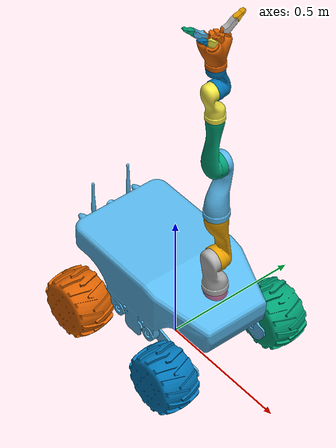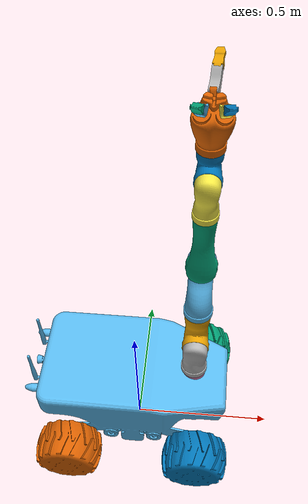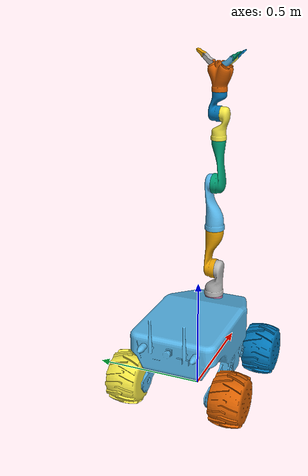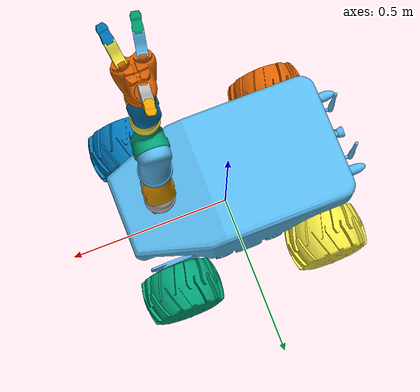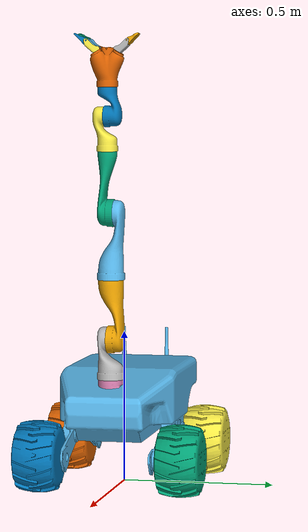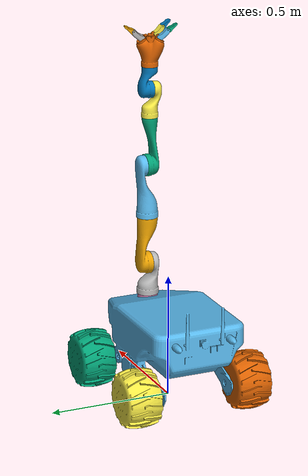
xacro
<?xml version="1.0"?>
<!-- URDF for Summit XL-GEN (LunaLab variant) -->
<robot xmlns:xacro="http://wiki.ros.org/xacro" name="$(arg name)">

  <!-- Imported elements -->
  <!-- Summit XL -->
  <xacro:include filename="$(find lunalab_summit_xl_gen_description)/urdf/summit_xl/summit_xl.xacro"/>

  <!-- Manipulators -->
  <xacro:include filename="$(find lunalab_summit_xl_gen_description)/urdf/lunalab_summit_xl_manipulators.xacro"/>

  <!-- Miscellaneous -->
  <xacro:include filename="$(find lunalab_summit_xl_gen_description)/urdf/lunalab_summit_xl_misc.xacro"/>

  <!-- Sensors -->
  <xacro:include filename="$(find lunalab_summit_xl_gen_description)/urdf/lunalab_summit_xl_sensors.xacro"/>

  <!-- Gazebo plugins -->
  <xacro:include filename="$(find lunalab_summit_xl_gen_description)/urdf/lunalab_summit_xl_gen.gazebo"/>

  <!-- Parameters -->
  <!-- Name of the robot (mandatory) -->
  <xacro:arg name="name" default="lunalab_summit_xl_gen"/>
  <!-- Prefix for all entities -->
  <xacro:arg name="prefix" default="robot_"/>

  <!-- Flag to enable safety limits controllers on manipulator joints -->
  <xacro:arg name="safety_limits" default="false"/>
  <!-- Lower and upper margin for position limits of all safety controllers -->
  <xacro:arg name="safety_position_margin" default="0.17453293"/>
  <!-- Parametric k-position factor of all safety controllers -->
  <xacro:arg name="safety_k_position" default="20"/>

  <!-- Flag to enable external devices (mesh) -->
  <xacro:arg name="external_devices" default="false"/>
  <!-- Flag to enable RealSense D435 -->
  <xacro:arg name="realsense_d435" default="false"/>
  <!-- Flag to enable RealSense D455 -->
  <xacro:arg name="realsense_d455" default="false"/>
  <!-- Flag to enable RealSense L515 -->
  <xacro:arg name="realsense_l515" default="false"/>
  <!-- Flag to enable LiDAR -->
  <xacro:arg name="lidar" default="false"/>

  <!-- Flag to enable collision geometry for the chassis of Summit XL -->
  <xacro:arg name="collision_chassis" default="true"/>
  <!-- Flag to enable collision geometry for the wheels of Summit XL -->
  <xacro:arg name="collision_wheels" default="true"/>
  <!-- Flag to enable collision geometry for manipulator's arm -->
  <xacro:arg name="collision_arm" default="true"/>
  <!-- Flag to enable collision geometry for manipulator's gripper (hand and fingers) -->
  <xacro:arg name="collision_gripper" default="true"/>
  <!-- Flag to enable collision geometry for external devices -->
  <xacro:arg name="collision_external_devices" default="true"/>
  <!-- Flag to enable collision geometry for RealSense D435 -->
  <xacro:arg name="collision_realsense_d435" default="true"/>
  <!-- Flag to enable collision geometry for RealSense D455 -->
  <xacro:arg name="collision_realsense_d455" default="true"/>
  <!-- Flag to enable collision geometry for RealSense L515 -->
  <xacro:arg name="collision_realsense_l515" default="true"/>
  <!-- Flag to enable collision geometry for LiDAR -->
  <xacro:arg name="collision_lidar" default="true"/>

  <!-- (unimplemented!) Flag to select the high or low quality model -->
  <xacro:arg name="high_quality_mesh" default="ignored"/>

  <!-- Flag to mimic joints of the gripper -->
  <xacro:arg name="mimic_gripper_joints" default="false"/>

  <!-- Flag to enable ros2 controllers for manipulator -->
  <xacro:arg name="ros2_control" default="true"/>

  <!-- The ros2_control plugin that should be loaded for the manipulator ('fake', 'ign', 'real' or custom) -->
  <xacro:arg name="ros2_control_plugin" default="ign"/>

  <!-- The output control command interface provided by ros2_control ('position', 'velocity' or 'effort') -->
  <xacro:arg name="ros2_control_command_interface" default="effort"/>

  <!-- The filepath to parameters of ROS 2 controllers -->
  <xacro:arg name="ros2_controller_parameters" default="$(find lunalab_summit_xl_gen_moveit_config)/config/controllers_$(arg ros2_control_command_interface).yaml"/>

  <!-- Flag to preserve fixed joints and prevent lumping when generating SDF for Gazebo -->
  <xacro:arg name="gazebo_preserve_fixed_joint" default="false"/>

  <!-- Flag to enable self-collision of all robot links when generating SDF for Gazebo -->
  <xacro:arg name="gazebo_self_collide" default="false"/>

  <!-- Flag to enable self-collision of robot between fingers (finger tips) when generating SDF for Gazebo -->
  <xacro:arg name="gazebo_self_collide_fingers" default="true"/>

  <!-- Flag to enable DiffDrive Gazebo plugin for Summit XL -->
  <xacro:arg name="gazebo_diff_drive" default="true"/>

  <!-- Flag to enable JointTrajectoryController Gazebo plugin for manipulator -->
  <xacro:arg name="gazebo_joint_trajectory_controller" default="false"/>

  <!-- Flag to enable JointStatePublisher Gazebo plugin for all joints -->
  <xacro:arg name="gazebo_joint_state_publisher" default="false"/>

  <!-- Flag to enable PosePublisher Gazebo plugin for true pose of robot -->
  <xacro:arg name="gazebo_pose_publisher" default="true"/>

  <!-- Properties -->
  <!-- Prefixes -->
  <xacro:property name="prefix_summit_xl" value="$(arg prefix)summit_xl_"/>
  <xacro:property name="prefix_manipulator" value="$(arg prefix)j2s7s300_"/>
  <xacro:property name="prefix_external_devices" value="$(arg prefix)external_devices_"/>
  <xacro:property name="prefix_realsense_d435" value="$(arg prefix)realsense_d435_"/>
  <xacro:property name="prefix_realsense_d455" value="$(arg prefix)realsense_d455_"/>
  <xacro:property name="prefix_realsense_l515" value="$(arg prefix)realsense_l515_"/>
  <xacro:property name="prefix_lidar" value="$(arg prefix)lidar_"/>

  <!-- Manipulator offset -->
  <xacro:property name="manipulator_base_parent" value="${prefix_summit_xl}base_link"/>
  <xacro:property name="manipulator_offset_xyz" value="0.204 0.0 0.11"/>
  <xacro:property name="manipulator_offset_rpy" value="0.0 0.0 0.0"/>

  <!-- External devices offset -->
  <xacro:property name="external_devices_base_parent" value="${prefix_summit_xl}base_link"/>
  <xacro:property name="external_devices_offset_xyz" value="-0.133 0.0 0.27"/>
  <xacro:property name="external_devices_offset_rpy" value="0.0 0.0 0.0"/>

  <!-- RealSense D435 offset -->
  <xacro:property name="realsense_d435_base_parent" value="${prefix_summit_xl}base_link"/>
  <xacro:property name="realsense_d435_offset_xyz" value="0.397 0.0 0.238"/>
  <xacro:property name="realsense_d435_offset_rpy" value="0.0 0.0 0.0"/>

  <!-- RealSense D455 offset -->
  <xacro:property name="realsense_d455_base_parent" value="${prefix_external_devices}link"/>
  <xacro:property name="realsense_d455_offset_xyz" value="-0.145329 0.0 0.322246"/>
  <xacro:property name="realsense_d455_offset_rpy" value="0.0 0.0 ${30*pi/180}"/>

  <!-- RealSense L515 offset -->
  <xacro:property name="realsense_l515_base_parent" value="${prefix_manipulator}link_7"/>
  <xacro:property name="realsense_l515_offset_xyz" value="0.0 0.0 -0.01"/>
  <xacro:property name="realsense_l515_offset_rpy" value="0.0 ${pi} 0.0"/>

  <!-- LiDAR offset -->
  <xacro:property name="lidar_base_parent" value="${prefix_summit_xl}base_link"/>
  <xacro:property name="lidar_offset_xyz" value="0.3 0.0 0.25"/>
  <xacro:property name="lidar_offset_rpy" value="0.0 0.0 0.0"/>

  <!-- Robot -->
  <!-- Summit XL -->
  <xacro:summit_xl
    prefix="${prefix_summit_xl}"
    add_base_footprint="true"
    collision_chassis="$(arg collision_chassis)"
    collision_wheels="$(arg collision_wheels)"
    high_quality_mesh="$(arg high_quality_mesh)"
    ros2_control="$(arg ros2_control)"
    ros2_control_plugin="$(arg ros2_control_plugin)"
    ros2_control_command_interface="none"
    gazebo_preserve_fixed_joint="$(arg gazebo_preserve_fixed_joint)"
    gazebo_diff_drive="$(arg gazebo_diff_drive)"
  />

  <!-- Kinova Gen2 (Jaco2, spherical wrist, 7DOF, 3-finger gripper) -->
  <xacro:j2s7s300
    base_parent="${manipulator_base_parent}"
    prefix="${prefix_manipulator}"
    joint_base_origin_xyz="${manipulator_offset_xyz}"
    joint_base_origin_rpy="${manipulator_offset_rpy}"
    safety_limits="$(arg safety_limits)"
    safety_position_margin="$(arg safety_position_margin)"
    safety_k_position="$(arg safety_k_position)"
    collision_arm="$(arg collision_arm)"
    collision_gripper="$(arg collision_gripper)"
    high_quality_mesh="$(arg high_quality_mesh)"
    mimic_gripper_joints="$(arg mimic_gripper_joints)"
    ros2_control="$(arg ros2_control)"
    ros2_control_plugin="$(arg ros2_control_plugin)"
    ros2_control_command_interface="$(arg ros2_control_command_interface)"
    gazebo_preserve_fixed_joint="$(arg gazebo_preserve_fixed_joint)"
    gazebo_self_collide_fingers="$(arg gazebo_self_collide_fingers)"
    gazebo_joint_trajectory_controller="$(arg gazebo_joint_trajectory_controller)"
  />

  <!-- Miscellaneous -->
  <xacro:if value="$(arg external_devices)">
    <xacro:external_devices
      base_parent="${external_devices_base_parent}"
      prefix="${prefix_external_devices}"
      joint_origin_xyz="${external_devices_offset_xyz}"
      joint_origin_rpy="${external_devices_offset_rpy}"
      collision="$(arg collision_external_devices)"
      high_quality_mesh="$(arg high_quality_mesh)"
      gazebo_preserve_fixed_joint="$(arg gazebo_preserve_fixed_joint)"
    />
  </xacro:if>

  <!-- Sensors -->
  <xacro:if value="$(arg realsense_d435)">
    <xacro:realsense_d435
      base_parent="${realsense_d435_base_parent}"
      prefix="${prefix_realsense_d435}"
      joint_origin_xyz="${realsense_d435_offset_xyz}"
      joint_origin_rpy="${realsense_d435_offset_rpy}"
      collision="$(arg collision_realsense_d435)"
      high_quality_mesh="$(arg high_quality_mesh)"
      gazebo_preserve_fixed_joint="$(arg gazebo_preserve_fixed_joint)"
    />
  </xacro:if>
  <xacro:if value="$(arg realsense_d455)">
    <xacro:realsense_d455
      base_parent="${realsense_d455_base_parent}"
      prefix="${prefix_realsense_d455}"
      joint_origin_xyz="${realsense_d455_offset_xyz}"
      joint_origin_rpy="${realsense_d455_offset_rpy}"
      collision="$(arg collision_realsense_d455)"
      high_quality_mesh="$(arg high_quality_mesh)"
      gazebo_preserve_fixed_joint="$(arg gazebo_preserve_fixed_joint)"
    />
  </xacro:if>
  <xacro:if value="$(arg realsense_l515)">
    <xacro:realsense_l515
      base_parent="${realsense_l515_base_parent}"
      prefix="${prefix_realsense_l515}"
      joint_origin_xyz="${realsense_l515_offset_xyz}"
      joint_origin_rpy="${realsense_l515_offset_rpy}"
      collision="$(arg collision_realsense_l515)"
      high_quality_mesh="$(arg high_quality_mesh)"
      gazebo_preserve_fixed_joint="$(arg gazebo_preserve_fixed_joint)"
    />
  </xacro:if>
  <xacro:if value="$(arg lidar)">
    <xacro:lidar
      base_parent="${lidar_base_parent}"
      prefix="${prefix_lidar}"
      joint_origin_xyz="${lidar_offset_xyz}"
      joint_origin_rpy="${lidar_offset_rpy}"
      collision="$(arg collision_lidar)"
      high_quality_mesh="$(arg high_quality_mesh)"
      gazebo_preserve_fixed_joint="$(arg gazebo_preserve_fixed_joint)"
    />
  </xacro:if>

  <!-- Gazebo - Self-collision -->
  <xacro:if value="$(arg gazebo_self_collide)">
    <gazebo>
      <self_collide>true</self_collide>
    </gazebo>
  </xacro:if>

  <!-- Gazebo - ROS 2 control (Ignition) -->
  <xacro:if value="$(arg ros2_control)">
    <xacro:if value="${'ign' in '$(arg ros2_control_plugin)'}">
      <xacro:ign_ros2_control controller_parameters="$(arg ros2_controller_parameters)"/>
    </xacro:if>
  </xacro:if>

  <!-- Gazebo - Joint state publisher -->
  <xacro:if value="$(arg gazebo_joint_state_publisher)">
    <xacro:gazebo_joint_state_publisher_summit_xl_gen_j2s7s300 prefix_summit_xl="${prefix_summit_xl}" prefix_manipulator="${prefix_manipulator}"/>
  </xacro:if>

  <!-- Gazebo - Pose publisher -->
  <xacro:if value="$(arg gazebo_pose_publisher)">
    <xacro:gazebo_pose_publisher/>
  </xacro:if>
</robot>

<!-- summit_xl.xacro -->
<!-- Macro for creation of Summit XL (base and wheels) -->
<robot xmlns:xacro="http://wiki.ros.org/xacro">

  <!-- Imported elements -->
  <xacro:include filename="$(find lunalab_summit_xl_gen_description)/urdf/summit_xl/summit_xl_base.xacro"/>
  <xacro:include filename="$(find lunalab_summit_xl_gen_description)/urdf/summit_xl/rubber_wheel.xacro"/>
  <xacro:include filename="$(find lunalab_summit_xl_gen_description)/urdf/summit_xl/summit_xl.ros2_control"/>
  <xacro:include filename="$(find lunalab_summit_xl_gen_description)/urdf/summit_xl/summit_xl.gazebo"/>

  <!-- Properties -->
  <!-- Wheel offset (from base_link to the center of the wheel) -->
  <xacro:property name="wheel_offset_x" value="0.229"/>
  <xacro:property name="wheel_offset_y" value="0.235"/>
  <xacro:property name="wheel_offset_z" value="0.0"/>

  <!-- Macro -->
  <!-- prefix                        - Prefix for all entities -->
  <!-- add_base_footprint            - Flag that enables base footprint link -->
  <!-- high_quality_mesh             - Flag to select the high or low quality model -->
  <xacro:macro name="summit_xl" params="
    prefix:=summit_xl_
    add_base_footprint:=true
    collision_chassis:=true
    collision_wheels:=true
    high_quality_mesh:=true
    ros2_control:=true
    ros2_control_plugin:=ign
    ros2_control_command_interface:=none
    gazebo_preserve_fixed_joint:=false
    gazebo_diff_drive:=true
  ">
    <!-- Radius of wheels based on the utilised wheels (only default rubber wheels are currently supported) -->
    <xacro:property name="wheel_radius" value="${rubber_wheel_radius}"/>

    <!-- Summit XL base -->
    <xacro:summit_xl_base prefix="${prefix}" add_base_footprint="${add_base_footprint}" collision="${collision_chassis}" high_quality_mesh="${high_quality_mesh}" gazebo_preserve_fixed_joint="${gazebo_preserve_fixed_joint}"/>

    <!-- Wheels (rubber) -->
    <xacro:rubber_wheel prefix="${prefix}front_left_" parent="${prefix}base_link" left_wheel="true" collision="${collision_wheels}" high_quality_mesh="${high_quality_mesh}">
      <origin xyz="${wheel_offset_x} ${wheel_offset_y} ${wheel_offset_z}" rpy="0 0 0"/>
    </xacro:rubber_wheel>
    <xacro:rubber_wheel prefix="${prefix}back_left_" parent="${prefix}base_link" left_wheel="true" collision="${collision_wheels}" high_quality_mesh="${high_quality_mesh}">
      <origin xyz="-${wheel_offset_x} ${wheel_offset_y} ${wheel_offset_z}" rpy="0 0 0"/>
    </xacro:rubber_wheel>
    <xacro:rubber_wheel prefix="${prefix}front_right_" parent="${prefix}base_link" left_wheel="false" collision="${collision_wheels}" high_quality_mesh="${high_quality_mesh}">
      <origin xyz="${wheel_offset_x} -${wheel_offset_y} ${wheel_offset_z}" rpy="0 0 0"/>
    </xacro:rubber_wheel>
    <xacro:rubber_wheel prefix="${prefix}back_right_" parent="${prefix}base_link" left_wheel="false" collision="${collision_wheels}" high_quality_mesh="${high_quality_mesh}">
      <origin xyz="-${wheel_offset_x} -${wheel_offset_y} ${wheel_offset_z}" rpy="0 0 0"/>
    </xacro:rubber_wheel>

    <!-- ROS 2 control -->
    <xacro:if value="${ros2_control}">
      <xacro:ros2_control_summit_xl prefix="${prefix}" plugin="${ros2_control_plugin}" command_interface="${ros2_control_command_interface}"/>
    </xacro:if>

    <!-- Gazebo - Differential drive -->
    <xacro:if value="${gazebo_diff_drive}">
      <xacro:gazebo_diff_drive prefix="${prefix}" wheel_separation="${2*wheel_offset_y}" wheel_radius="${wheel_radius}"/>
    </xacro:if>
  </xacro:macro>

</robot>

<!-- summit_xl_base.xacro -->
<robot xmlns:xacro="http://wiki.ros.org/xacro">

  <!-- Macro -->
  <xacro:macro name="summit_xl_base" params="
    prefix
    add_base_footprint
    collision:=true
    high_quality_mesh
    gazebo_preserve_fixed_joint:=false
  ">
    <xacro:if value="${add_base_footprint}">
      <link name="${prefix}base_footprint">
        <xacro:if value="${gazebo_preserve_fixed_joint}">
          <inertial>
            <mass value="1e-5"/>
            <inertia ixx="1e-35" iyy="1e-35" izz="1e-35" ixy="0.0" ixz="0.0" iyz="0.0"/>
          </inertial>
        </xacro:if>
      </link>
      <joint name="${prefix}base_footprint_joint" type="fixed">
        <origin xyz="0 0 ${wheel_radius}" rpy="0 0 0"/>
        <parent link="${prefix}base_footprint"/>
        <child link="${prefix}base_link"/>
      </joint>
      <xacro:if value="${gazebo_preserve_fixed_joint}">
        <gazebo reference="${prefix}base_footprint_joint">
          <preserveFixedJoint>true</preserveFixedJoint>
          <disableFixedJointLumping>true</disableFixedJointLumping>
        </gazebo>
      </xacro:if>
    </xacro:if>

    <link name="${prefix}base_link">
      <inertial>
        <mass value="50.0"/>
        <origin xyz="-0.0246066 -1.3125e-05 0.157214"/>
        <inertia ixx="0.8773624360089227" ixy="-0.0001914814670566834" ixz="0.09929940455155015" iyy="1.739156928222513" iyz="2.9628167736189533e-05" izz="1.9022131402815483"/>
      </inertial>
      <visual>
        <origin xyz="0 0 0" rpy="0 0 0"/>
        <geometry>
          <mesh filename="package://lunalab_summit_xl_gen_description/meshes/summit_xl/visual/summit_xl_chassis.dae"/>
        </geometry>
      </visual>
      <xacro:if value="${collision}">
        <collision>
          <origin xyz="0 0 0" rpy="0 0 0 "/>
          <geometry>
            <mesh filename="package://lunalab_summit_xl_gen_description/meshes/summit_xl/collision/summit_xl_chassis.stl"/>
          </geometry>
        </collision>
      </xacro:if>
    </link>

    <xacro:if value="${gazebo_preserve_fixed_joint}">
      <gazebo reference="${prefix}base_docking_joint">
        <preserveFixedJoint>true</preserveFixedJoint>
        <disableFixedJointLumping>true</disableFixedJointLumping>
      </gazebo>
    </xacro:if>

    <gazebo reference="${prefix}base_link">
      <visual>
        <material>
          <diffuse>1 1 1 1</diffuse>
          <specular>1 1 1 1</specular>
          <pbr>
            <metal>
              <albedo_map>package://lunalab_summit_xl_gen_description/materials/textures/summit_xl/chassis_albedo.png</albedo_map>
              <roughness_map>package://lunalab_summit_xl_gen_description/materials/textures/summit_xl/chassis_roughness.png</roughness_map>
              <metalness_map>package://lunalab_summit_xl_gen_description/materials/textures/summit_xl/chassis_metalness.png</metalness_map>
            </metal>
          </pbr>
        </material>
      </visual>
    </gazebo>
  </xacro:macro>

</robot>

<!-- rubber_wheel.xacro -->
<robot xmlns:xacro="http://wiki.ros.org/xacro">

  <!-- Properties -->
  <!-- Link -->
  <xacro:property name="rubber_wheel_radius" value="0.11"/>
  <xacro:property name="rubber_wheel_width" value="0.15"/>
  <xacro:property name="rubber_wheel_mass" value="6.5"/>
  <xacro:property name="rubber_wheel_mu1" value="1.9"/>
  <xacro:property name="rubber_wheel_mu2" value="1.7"/>

  <!-- Joint -->
  <xacro:property name="rubber_wheel_effort_limit" value="100"/>
  <xacro:property name="rubber_wheel_velocity_limit" value="100"/>
  <xacro:property name="rubber_wheel_damping" value="0.035"/>
  <xacro:property name="rubber_wheel_friction" value="0.0005"/>

  <!-- Macro -->
  <xacro:macro name="inertia_cylinder" params="
    mass
    height
    radius
    axis:=z
  ">
    <xacro:if value="${axis == 'x'}">
      <inertia ixx="${mass*radius*radius/2}" iyy="${mass*(3*radius*radius+height*height)/12}" izz="${mass*(3*radius*radius+height*height)/12}" ixy="0" ixz="0" iyz="0"/>
    </xacro:if>

    <xacro:if value="${axis == 'y'}">
      <inertia ixx="${mass*(3*radius*radius+height*height)/12}" iyy="${mass*radius*radius/2}" izz="${mass*(3*radius*radius+height*height)/12}" ixy="0" ixz="0" iyz="0"/>
    </xacro:if>

    <xacro:if value="${axis == 'z'}">
      <inertia ixx="${mass*(3*radius*radius+height*height)/12}" iyy="${mass*(3*radius*radius+height*height)/12}" izz="${mass*radius*radius/2}" ixy="0" ixz="0" iyz="0"/>
    </xacro:if>
  </xacro:macro>

  <!-- Macro -->
  <xacro:macro name="rubber_wheel" params="
    prefix
    parent
    *origin
    left_wheel
    collision:=true
    high_quality_mesh
  ">
    <joint name="${prefix}wheel_joint" type="continuous">
      <parent link="${parent}"/>
      <child link="${prefix}wheel"/>
      <xacro:insert_block name="origin"/>
      <axis xyz="0 1 0" rpy="0 0 0"/>
      <limit effort="${rubber_wheel_effort_limit}" velocity="${rubber_wheel_velocity_limit}"/>
      <dynamics damping="${rubber_wheel_damping}" friction="${rubber_wheel_friction}"/>
    </joint>

    <link name="${prefix}wheel">
      <visual>
        <origin xyz="0 0 0" rpy="0 0 0"/>
        <geometry>
          <xacro:if value="${left_wheel}">
            <mesh filename="package://lunalab_summit_xl_gen_description/meshes/summit_xl/visual/rubber_wheel_left.dae"/>
          </xacro:if>
          <xacro:unless value="${left_wheel}">
            <mesh filename="package://lunalab_summit_xl_gen_description/meshes/summit_xl/visual/rubber_wheel_right.dae"/>
          </xacro:unless>
        </geometry>
      </visual>
      <xacro:if value="${collision}">
        <collision>
          <origin xyz="0 0 0" rpy="${pi/2} 0 0"/>
          <geometry>
            <cylinder length="${rubber_wheel_width}" radius="${rubber_wheel_radius}"/>
          </geometry>
        </collision>
      </xacro:if>
      <inertial>
        <mass value="${rubber_wheel_mass}"/>
        <origin xyz="0 0 0"/>
        <xacro:inertia_cylinder mass="${rubber_wheel_mass}" height="${rubber_wheel_width}" radius="${rubber_wheel_radius}" axis="y"/>
      </inertial>
    </link>

    <transmission name="${prefix}wheel_joint_trans">
      <type>transmission_interface/SimpleTransmission</type>
      <joint name="${prefix}wheel_joint">
        <hardwareInterface>hardware_interface/VelocityJointInterface</hardwareInterface>
      </joint>
      <actuator name="${prefix}wheel_joint_actuator">
        <mechanicalReduction>1</mechanicalReduction>
        <motorTorqueConstant>20</motorTorqueConstant>
      </actuator>
    </transmission>

    <gazebo reference="${prefix}wheel">
      <mu1 value="${rubber_wheel_mu1}"/>
      <mu2 value="${rubber_wheel_mu2}"/>
      <fdir1 value="1 0 0"/>
    </gazebo>

    <gazebo reference="${prefix}wheel">
      <visual>
        <material>
            <diffuse>1 1 1 1</diffuse>
            <specular>1 1 1 1</specular>
            <pbr>
                <metal>
                    <albedo_map>package://lunalab_summit_xl_gen_description/materials/textures/summit_xl/rubber_wheel_albedo.png</albedo_map>
                    <normal_map>package://lunalab_summit_xl_gen_description/materials/textures/summit_xl/rubber_wheel_normal.png</normal_map>
                    <roughness_map>package://lunalab_summit_xl_gen_description/materials/textures/summit_xl/rubber_wheel_roughness.png</roughness_map>
                    <metalness_map>package://lunalab_summit_xl_gen_description/materials/textures/summit_xl/rubber_wheel_metalness.png</metalness_map>
                </metal>
            </pbr>
        </material>
      </visual>
    </gazebo>
  </xacro:macro>

</robot>

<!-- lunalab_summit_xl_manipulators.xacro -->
<!-- Macro that includes supported manipulators -->
<robot xmlns:xacro="http://wiki.ros.org/xacro">

  <!-- Imported elements -->
  <!-- j2s7s300 - Kinova (Jaco) Gen2 robot arm with spherical wrist, 7 DOF and a 3-finger gripper -->
  <xacro:include filename="$(find lunalab_summit_xl_gen_description)/urdf/manipulators/kinova/j2s7s300.xacro"/>

</robot>

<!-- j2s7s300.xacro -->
<!-- Kinova robot j2s7s300 -->
<!-- j - Jaco -->
<!-- 2 - v2 (Gen2) -->
<!-- s - spherical wrist -->
<!-- 7 - 7 DOF -->
<!-- s - service -->
<!-- 3 - 3 finger gripper -->
<!-- 0 - reserved -->
<!-- 0 - reserved -->
<robot xmlns:xacro="http://www.ros.org/wiki/xacro">

  <!-- Imported elements -->
  <xacro:include filename="$(find lunalab_summit_xl_gen_description)/urdf/manipulators/kinova/kinova_common.xacro"/>
  <xacro:include filename="$(find lunalab_summit_xl_gen_description)/urdf/manipulators/kinova/kinova_finger_set.xacro"/>
  <xacro:include filename="$(find lunalab_summit_xl_gen_description)/urdf/manipulators/kinova/kinova.ros2_control"/>
  <xacro:include filename="$(find lunalab_summit_xl_gen_description)/urdf/manipulators/kinova/kinova.gazebo"/>

  <!-- Properties -->
  <xacro:property name="link_base_mesh" value="base"/>
  <xacro:property name="link_1_mesh" value="shoulder"/>
  <xacro:property name="link_2_mesh" value="arm_half_1"/>
  <xacro:property name="link_3_mesh" value="arm_half_2"/>
  <xacro:property name="link_4_mesh" value="forearm"/>
  <xacro:property name="link_5_mesh" value="wrist_spherical_1"/>
  <xacro:property name="link_6_mesh" value="wrist_spherical_2"/>
  <xacro:property name="link_7_mesh" value="hand_3finger"/>

  <xacro:property name="joint_base" value="joint_base"/>
  <xacro:property name="joint_base_type" value="fixed"/>
  <xacro:property name="joint_base_axis_xyz" value="0 0 0"/>
  <xacro:property name="default_joint_base_origin_xyz" value="0 0 0"/>
  <xacro:property name="default_joint_base_origin_rpy" value="0 0 0"/>

  <xacro:property name="joint_1" value="joint_1"/>
  <xacro:property name="joint_1_type" value="revolute"/>
  <xacro:property name="joint_1_axis_xyz" value="0 0 1"/>
  <xacro:property name="joint_1_origin_xyz" value="0 0 0.15675"/>
  <xacro:property name="joint_1_origin_rpy" value="0 ${pi} 0"/>
  <xacro:property name="joint_1_lower_limit" value="${-2*pi}"/>
  <xacro:property name="joint_1_upper_limit" value="${2*pi}"/>
  <xacro:property name="joint_1_velocity_limit" value="${36*pi/180}"/>
  <xacro:property name="joint_1_torque_limit" value="40"/>
  <xacro:property name="joint_1_damping" value="15.0"/>
  <xacro:property name="joint_1_friction" value="0.5"/>

  <xacro:property name="joint_2" value="joint_2"/>
  <xacro:property name="joint_2_type" value="revolute"/>
  <xacro:property name="joint_2_axis_xyz" value="0 0 1"/>
  <xacro:property name="joint_2_origin_xyz" value="0 0.0016 -0.11875"/>
  <xacro:property name="joint_2_origin_rpy" value="-${pi/2} 0 ${pi}"/>
  <xacro:property name="joint_2_lower_limit" value="${47*pi/180}"/>
  <xacro:property name="joint_2_upper_limit" value="${313*pi/180}"/>
  <xacro:property name="joint_2_velocity_limit" value="${36*pi/180}"/>
  <xacro:property name="joint_2_torque_limit" value="40"/>
  <xacro:property name="joint_2_damping" value="16.0"/>
  <xacro:property name="joint_2_friction" value="0.9"/>

  <xacro:property name="joint_3" value="joint_3"/>
  <xacro:property name="joint_3_type" value="revolute"/>
  <xacro:property name="joint_3_axis_xyz" value="0 0 1"/>
  <xacro:property name="joint_3_origin_xyz" value="0 -0.205 0"/>
  <xacro:property name="joint_3_origin_rpy" value="-${pi/2} 0 0"/>
  <xacro:property name="joint_3_lower_limit" value="${-2*pi}"/>
  <xacro:property name="joint_3_upper_limit" value="${2*pi}"/>
  <xacro:property name="joint_3_velocity_limit" value="${36*pi/180}"/>
  <xacro:property name="joint_3_torque_limit" value="40"/>
  <xacro:property name="joint_3_damping" value="12.0"/>
  <xacro:property name="joint_3_friction" value="0.8"/>

  <xacro:property name="joint_4" value="joint_4"/>
  <xacro:property name="joint_4_type" value="revolute"/>
  <xacro:property name="joint_4_axis_xyz" value="0 0 1"/>
  <xacro:property name="joint_4_origin_xyz" value="0 0 -0.205"/>
  <xacro:property name="joint_4_origin_rpy" value="${pi/2} 0 ${pi}"/>
  <xacro:property name="joint_4_lower_limit" value="${30*pi/180}"/>
  <xacro:property name="joint_4_upper_limit" value="${330*pi/180}"/>
  <xacro:property name="joint_4_velocity_limit" value="${36*pi/180}"/>
  <xacro:property name="joint_4_torque_limit" value="40"/>
  <xacro:property name="joint_4_damping" value="8.0"/>
  <xacro:property name="joint_4_friction" value="0.55"/>

  <xacro:property name="joint_5" value="joint_5"/>
  <xacro:property name="joint_5_type" value="revolute"/>
  <xacro:property name="joint_5_axis_xyz" value="0 0 1"/>
  <xacro:property name="joint_5_origin_xyz" value="0 0.2073 -0.0114"/>
  <xacro:property name="joint_5_origin_rpy" value="${-pi/2} 0 ${pi}"/>
  <xacro:property name="joint_5_lower_limit" value="${-2*pi}"/>
  <xacro:property name="joint_5_upper_limit" value="${2*pi}"/>
  <xacro:property name="joint_5_velocity_limit" value="${48*pi/180}"/>
  <xacro:property name="joint_5_torque_limit" value="20"/>
  <xacro:property name="joint_5_damping" value="6.5"/>
  <xacro:property name="joint_5_friction" value="0.35"/>

  <xacro:property name="joint_6" value="joint_6"/>
  <xacro:property name="joint_6_type" value="revolute"/>
  <xacro:property name="joint_6_axis_xyz" value="0 0 1"/>
  <xacro:property name="joint_6_origin_xyz" value="0 0 -0.10375"/>
  <xacro:property name="joint_6_origin_rpy" value="${pi/2} 0 ${pi}"/>
  <xacro:property name="joint_6_lower_limit" value="${65*pi/180}"/>
  <xacro:property name="joint_6_upper_limit" value="${295*pi/180}"/>
  <xacro:property name="joint_6_velocity_limit" value="${48*pi/180}"/>
  <xacro:property name="joint_6_torque_limit" value="20"/>
  <xacro:property name="joint_6_damping" value="5.5"/>
  <xacro:property name="joint_6_friction" value="0.25"/>

  <xacro:property name="joint_7" value="joint_7"/>
  <xacro:property name="joint_7_type" value="revolute"/>
  <xacro:property name="joint_7_axis_xyz" value="0 0 1"/>
  <xacro:property name="joint_7_origin_xyz" value="0 0.10375 0"/>
  <xacro:property name="joint_7_origin_rpy" value="${-pi/2} 0 ${pi}"/>
  <xacro:property name="joint_7_lower_limit" value="${-2*pi}"/>
  <xacro:property name="joint_7_upper_limit" value="${2*pi}"/>
  <xacro:property name="joint_7_velocity_limit" value="${48*pi/180}"/>
  <xacro:property name="joint_7_torque_limit" value="20"/>
  <xacro:property name="joint_7_damping" value="4.5"/>
  <xacro:property name="joint_7_friction" value="0.2"/>

  <xacro:property name="joint_end_effector" value="end_effector_offset"/>
  <xacro:property name="joint_end_effector_origin_xyz" value="0 0 -0.1600"/>
  <xacro:property name="joint_end_effector_origin_rpy" value="${pi} 0 ${pi/2}"/>

  <xacro:property name="link_base_mu" value="0.9"/>
  <xacro:property name="link_1_mu" value="0.9"/>
  <xacro:property name="link_2_mu" value="0.9"/>
  <xacro:property name="link_3_mu" value="0.9"/>
  <xacro:property name="link_4_mu" value="0.9"/>
  <xacro:property name="link_5_mu" value="0.9"/>
  <xacro:property name="link_6_mu" value="0.9"/>
  <xacro:property name="link_7_mu" value="0.9"/>

  <!-- Macro -->
  <xacro:macro name="j2s7s300" params="
    base_parent
    prefix:=j2s7s300_
    joint_base_origin_xyz:=${default_joint_base_origin_xyz}
    joint_base_origin_rpy:=${default_joint_base_origin_rpy}
    safety_limits:=false
    safety_position_margin:=${10*pi/180}
    safety_k_position:=20.0
    high_quality_mesh:=false
    collision_arm:=true
    collision_gripper:=true
    mimic_gripper_joints:=false
    ros2_control:=true
    ros2_control_plugin:=ign
    ros2_control_command_interface:=effort
    gazebo_preserve_fixed_joint:=false
    gazebo_self_collide_fingers:=true
    gazebo_joint_trajectory_controller:=true
  ">
    <xacro:kinova_armlink link_name="${prefix}link_base" link_mesh="${link_base_mesh}" collision="${collision_arm}" mu="${link_base_mu}"/>
    <xacro:kinova_armjoint joint_name="${prefix}joint_base" type="${joint_base_type}" parent="${base_parent}" child="${prefix}link_base" joint_axis_xyz="${joint_base_axis_xyz}" joint_origin_xyz="${joint_base_origin_xyz}" joint_origin_rpy="${joint_base_origin_rpy}" joint_lower_limit="0" joint_upper_limit="0" joint_velocity_limit="0" joint_torque_limit="0" fixed="true" safety_limits="${safety_limits}" safety_position_margin="${safety_position_margin}" safety_k_position="${safety_k_position}" gazebo_preserve_fixed_joint="${gazebo_preserve_fixed_joint}"/>

    <xacro:kinova_armlink link_name="${prefix}link_1" link_mesh="${link_1_mesh}" collision="${collision_arm}" mu="${link_1_mu}"/>
    <xacro:kinova_armjoint joint_name="${prefix}joint_1" type="${joint_1_type}" parent="${prefix}link_base" child="${prefix}link_1" joint_axis_xyz="${joint_1_axis_xyz}" joint_origin_xyz="${joint_1_origin_xyz}" joint_origin_rpy="${joint_1_origin_rpy}" joint_damping="${joint_1_damping}" joint_friction="${joint_1_friction}" joint_lower_limit="${joint_1_lower_limit}" joint_upper_limit="${joint_1_upper_limit}" joint_velocity_limit="${joint_1_velocity_limit}" joint_torque_limit="${joint_1_torque_limit}" safety_limits="${safety_limits}" safety_position_margin="${safety_position_margin}" safety_k_position="${safety_k_position}" gazebo_preserve_fixed_joint="${gazebo_preserve_fixed_joint}"/>

    <xacro:kinova_armlink link_name="${prefix}link_2" link_mesh="${link_2_mesh}" collision="${collision_arm}" mu="${link_2_mu}"/>
    <xacro:kinova_armjoint joint_name="${prefix}joint_2" type="${joint_2_type}" parent="${prefix}link_1" child="${prefix}link_2" joint_axis_xyz="${joint_2_axis_xyz}" joint_origin_xyz="${joint_2_origin_xyz}" joint_origin_rpy="${joint_2_origin_rpy}" joint_damping="${joint_2_damping}" joint_friction="${joint_2_friction}" joint_lower_limit="${joint_2_lower_limit}" joint_upper_limit="${joint_2_upper_limit}" joint_velocity_limit="${joint_2_velocity_limit}" joint_torque_limit="${joint_2_torque_limit}" safety_limits="${safety_limits}" safety_position_margin="${safety_position_margin}" safety_k_position="${safety_k_position}" gazebo_preserve_fixed_joint="${gazebo_preserve_fixed_joint}"/>

    <xacro:kinova_armlink link_name="${prefix}link_3" link_mesh="${link_3_mesh}" collision="${collision_arm}" mu="${link_3_mu}"/>
    <xacro:kinova_armjoint joint_name="${prefix}joint_3" type="${joint_3_type}" parent="${prefix}link_2" child="${prefix}link_3" joint_axis_xyz="${joint_3_axis_xyz}" joint_origin_xyz="${joint_3_origin_xyz}" joint_origin_rpy="${joint_3_origin_rpy}" joint_damping="${joint_3_damping}" joint_friction="${joint_3_friction}" joint_lower_limit="${joint_3_lower_limit}" joint_upper_limit="${joint_3_upper_limit}" joint_velocity_limit="${joint_3_velocity_limit}" joint_torque_limit="${joint_3_torque_limit}" safety_limits="${safety_limits}" safety_position_margin="${safety_position_margin}" safety_k_position="${safety_k_position}" gazebo_preserve_fixed_joint="${gazebo_preserve_fixed_joint}"/>

    <xacro:kinova_armlink link_name="${prefix}link_4" link_mesh="${link_4_mesh}" collision="${collision_arm}" mu="${link_4_mu}"/>
    <xacro:kinova_armjoint joint_name="${prefix}joint_4" type="${joint_4_type}" parent="${prefix}link_3" child="${prefix}link_4" joint_axis_xyz="${joint_4_axis_xyz}" joint_origin_xyz="${joint_4_origin_xyz}" joint_origin_rpy="${joint_4_origin_rpy}" joint_damping="${joint_4_damping}" joint_friction="${joint_4_friction}" joint_lower_limit="${joint_4_lower_limit}" joint_upper_limit="${joint_4_upper_limit}" joint_velocity_limit="${joint_4_velocity_limit}" joint_torque_limit="${joint_4_torque_limit}" safety_limits="${safety_limits}" safety_position_margin="${safety_position_margin}" safety_k_position="${safety_k_position}" gazebo_preserve_fixed_joint="${gazebo_preserve_fixed_joint}"/>

    <xacro:kinova_armlink link_name="${prefix}link_5" link_mesh="${link_5_mesh}" collision="${collision_arm}" mu="${link_5_mu}"/>
    <xacro:kinova_armjoint joint_name="${prefix}joint_5" type="${joint_5_type}" parent="${prefix}link_4" child="${prefix}link_5" joint_axis_xyz="${joint_5_axis_xyz}" joint_origin_xyz="${joint_5_origin_xyz}" joint_origin_rpy="${joint_5_origin_rpy}" joint_damping="${joint_5_damping}" joint_friction="${joint_5_friction}" joint_lower_limit="${joint_5_lower_limit}" joint_upper_limit="${joint_5_upper_limit}" joint_velocity_limit="${joint_5_velocity_limit}" joint_torque_limit="${joint_5_torque_limit}" safety_limits="${safety_limits}" safety_position_margin="${safety_position_margin}" safety_k_position="${safety_k_position}" gazebo_preserve_fixed_joint="${gazebo_preserve_fixed_joint}"/>

    <xacro:kinova_armlink link_name="${prefix}link_6" link_mesh="${link_6_mesh}" collision="${collision_arm}" mu="${link_6_mu}"/>
    <xacro:kinova_armjoint joint_name="${prefix}joint_6" type="${joint_6_type}" parent="${prefix}link_5" child="${prefix}link_6" joint_axis_xyz="${joint_6_axis_xyz}" joint_origin_xyz="${joint_6_origin_xyz}" joint_origin_rpy="${joint_6_origin_rpy}" joint_damping="${joint_6_damping}" joint_friction="${joint_6_friction}" joint_lower_limit="${joint_6_lower_limit}" joint_upper_limit="${joint_6_upper_limit}" joint_velocity_limit="${joint_6_velocity_limit}" joint_torque_limit="${joint_6_torque_limit}" safety_limits="${safety_limits}" safety_position_margin="${safety_position_margin}" safety_k_position="${safety_k_position}" gazebo_preserve_fixed_joint="${gazebo_preserve_fixed_joint}"/>

    <xacro:kinova_armlink link_name="${prefix}link_7" link_mesh="${link_7_mesh}" collision="${collision_gripper}" mu="${link_7_mu}"/>
    <xacro:kinova_armjoint joint_name="${prefix}joint_7" type="${joint_7_type}" parent="${prefix}link_6" child="${prefix}link_7" joint_axis_xyz="${joint_7_axis_xyz}" joint_origin_xyz="${joint_7_origin_xyz}" joint_origin_rpy="${joint_7_origin_rpy}" joint_damping="${joint_7_damping}" joint_friction="${joint_7_friction}" joint_lower_limit="${joint_7_lower_limit}" joint_upper_limit="${joint_7_upper_limit}" joint_velocity_limit="${joint_7_velocity_limit}" joint_torque_limit="${joint_7_torque_limit}" safety_limits="${safety_limits}" safety_position_margin="${safety_position_margin}" safety_k_position="${safety_k_position}" gazebo_preserve_fixed_joint="${gazebo_preserve_fixed_joint}"/>

    <xacro:kinova_virtual_fixed_link joint_name="${prefix}joint_end_effector" parent="${prefix}link_7" child="${prefix}end_effector" joint_origin_xyz="${joint_end_effector_origin_xyz}" joint_origin_rpy="${joint_end_effector_origin_rpy}" gazebo_preserve_fixed_joint="${gazebo_preserve_fixed_joint}"/>

    <xacro:kinova_3fingers link_hand="${prefix}link_7" prefix="${prefix}" collision="${collision_gripper}" mimic_joints="${mimic_gripper_joints}" gazebo_self_collide_fingers="${gazebo_self_collide_fingers}"/>

    <!-- ROS 2 control -->
    <xacro:if value="${ros2_control}">
      <xacro:ros2_control_j2s7s300_arm prefix="${prefix}" plugin="${ros2_control_plugin}" command_interface="${ros2_control_command_interface}"/>
      <xacro:ros2_control_3fingers prefix="${prefix}" plugin="${ros2_control_plugin}" command_interface="${ros2_control_command_interface}" mimic_joints="${mimic_gripper_joints}"/>
    </xacro:if>

    <!-- Gazebo - Joint trajectory controller -->
    <xacro:if value="${gazebo_joint_trajectory_controller}">
      <xacro:gazebo_joint_trajectory_controller_j2s7s300 prefix="${prefix}"/>
    </xacro:if>
  </xacro:macro>

</robot>

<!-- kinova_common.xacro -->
<robot xmlns:xacro="http://www.ros.org/wiki/xacro">

  <!-- Imported elements -->
  <xacro:include filename="$(find lunalab_summit_xl_gen_description)/urdf/manipulators/kinova/kinova_inertial.xacro"/>

  <!-- Macro -->
  <!-- link_name     - Name of the link to create -->
  <!-- link_mesh     - Name of the mesh to load (filename must be identical for visual and collision geometry, while located in their specific directories) -->
  <!-- collision     - Flag to enable collision geometry -->
  <!-- mu            - Friction of the surface applied to both directions -->
  <xacro:macro name="kinova_armlink" params="
    link_name
    link_mesh
    collision:=true
    mu:=1.0
  ">
    <link name="${link_name}">
      <visual>
        <geometry>
          <mesh filename="package://lunalab_summit_xl_gen_description/meshes/kinova/visual/${link_mesh}.dae"/>
        </geometry>
      </visual>

      <xacro:if value="${collision}">
        <collision>
          <geometry>
            <mesh filename="package://lunalab_summit_xl_gen_description/meshes/kinova/collision/${link_mesh}.stl"/>
          </geometry>
        </collision>
      </xacro:if>

      <xacro:kinova_inertial link_mesh="${link_mesh}"/>
    </link>

    <gazebo reference="${link_name}">
      <mu1 value="${mu}"/>
      <mu2 value="${mu}"/>
    </gazebo>

    <gazebo reference="${link_name}">
      <visual>
        <material>
            <diffuse>1 1 1 1</diffuse>
            <specular>1 1 1 1</specular>
            <pbr>
              <metal>
                  <albedo_map>package://lunalab_summit_xl_gen_description/materials/textures/kinova/kinova_gen2_albedo.png</albedo_map>
                  <roughness_map>package://lunalab_summit_xl_gen_description/materials/textures/kinova/kinova_gen2_roughness.png</roughness_map>
                  <metalness_map>package://lunalab_summit_xl_gen_description/materials/textures/kinova/kinova_gen2_metalness.png</metalness_map>
              </metal>
            </pbr>
        </material>
      </visual>
    </gazebo>
  </xacro:macro>

  <!-- Macro -->
  <xacro:property name="dummy_default_value" value="1234567890"/>
  <xacro:macro name="kinova_armjoint" params="
    joint_name
    type
    parent
    child
    joint_axis_xyz
    joint_origin_xyz
    joint_origin_rpy
    joint_damping:=0.0
    joint_friction:=0.0
    joint_lower_limit:=${dummy_default_value}
    joint_upper_limit:=${dummy_default_value}
    joint_velocity_limit:=${dummy_default_value}
    joint_torque_limit:=${dummy_default_value}
    fixed:=false
    safety_limits:=false
    safety_position_margin:=${10*pi/180}
    safety_k_position:=20.0
    gazebo_preserve_fixed_joint:=false
    gazebo_ros_ft_sensor:=false
  ">
    <xacro:if value="${(type == 'fixed' and not fixed) or (type != 'fixed' and fixed)}">
      <xacro:ERROR_inconsistent_joint_type_specification/>
    </xacro:if>
    <xacro:if value="${type == 'revolute'}">
      <xacro:if value="${joint_lower_limit == dummy_default_value}">
        <xacro:ERROR_joint_lower_limit_needs_to_be_set_for_a_revolute_joint/>
      </xacro:if>
      <xacro:if value="${joint_upper_limit == dummy_default_value}">
        <xacro:ERROR_joint_upper_limit_needs_to_be_set_for_a_revolute_joint/>
      </xacro:if>
    </xacro:if>
    <xacro:unless value="${type == 'fixed'}">
      <xacro:if value="${joint_velocity_limit == dummy_default_value}">
        <xacro:ERROR_joint_velocity_limit_needs_to_be_set_for_a_non_fixed_joint/>
      </xacro:if>
      <xacro:if value="${joint_torque_limit == dummy_default_value}">
        <xacro:ERROR_joint_torque_limit_needs_to_be_set_for_a_non_fixed_joint/>
      </xacro:if>
    </xacro:unless>
    <joint name="${joint_name}" type="${type}">
      <parent link="${parent}"/>
      <child link="${child}"/>
      <axis xyz="${joint_axis_xyz}"/>
      <xacro:if value="${type == 'revolute'}">
        <limit effort="${joint_torque_limit}" velocity="${joint_velocity_limit}" lower="${joint_lower_limit}" upper="${joint_upper_limit}"/>
      </xacro:if>
      <xacro:if value="${type == 'continuous'}">
        <limit effort="${joint_torque_limit}" velocity="${joint_velocity_limit}"/>
      </xacro:if>
      <origin xyz="${joint_origin_xyz}" rpy="${joint_origin_rpy}"/>
      <dynamics damping="${joint_damping}" friction="${joint_friction}"/>
      <xacro:if value="${safety_limits}">
        <safety_controller soft_lower_limit="${joint_lower_limit+safety_position_margin}" soft_upper_limit="${joint_upper_limit-safety_position_margin}" k_position="${safety_k_position}" k_velocity="0.0"/>
      </xacro:if>
    </joint>
    <xacro:if value="${fixed}">
      <xacro:if value="${gazebo_preserve_fixed_joint}">
        <gazebo reference="${joint_name}">
          <preserveFixedJoint>true</preserveFixedJoint>
          <disableFixedJointLumping>true</disableFixedJointLumping>
        </gazebo>
      </xacro:if>
    </xacro:if>
    <xacro:unless value="${fixed}">
      <transmission name="${joint_name}_trans">
        <type>transmission_interface/SimpleTransmission</type>
        <joint name="${joint_name}">
          <hardwareInterface>hardware_interface/EffortJointInterface</hardwareInterface>
        </joint>
        <actuator name="${joint_name}_actuator">
          <mechanicalReduction>160</mechanicalReduction>
        </actuator>
      </transmission>

      <!-- Add ros_ft_sensor Gazebo plugin (torce-torque sensor), if enabled -->
      <xacro:if value="${gazebo_ros_ft_sensor}">
        <xacro:gazebo_ros_ft_sensor joint_name="${joint_name}"/>
      </xacro:if>
    </xacro:unless>
  </xacro:macro>

  <!-- Macro -->
  <xacro:macro name="kinova_virtual_fixed_link" params="
    joint_name
    parent
    child
    joint_origin_xyz
    joint_origin_rpy
    gazebo_preserve_fixed_joint:=false
  ">
    <link name="${child}">
      <xacro:if value="${gazebo_preserve_fixed_joint}">
        <inertial>
          <mass value="1e-5"/>
          <inertia ixx="1e-35" iyy="1e-35" izz="1e-35" ixy="0.0" ixz="0.0" iyz="0.0"/>
        </inertial>
      </xacro:if>
    </link>
    <joint name="${joint_name}" type="fixed">
      <parent link="${parent}"/>
      <child link="${child}"/>
      <origin xyz="${joint_origin_xyz}" rpy="${joint_origin_rpy}"/>
    </joint>
    <xacro:if value="${gazebo_preserve_fixed_joint}">
      <gazebo reference="${joint_name}">
        <preserveFixedJoint>true</preserveFixedJoint>
        <disableFixedJointLumping>true</disableFixedJointLumping>
      </gazebo>
    </xacro:if>
  </xacro:macro>

</robot>

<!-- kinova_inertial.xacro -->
<robot xmlns:xacro="http://www.ros.org/wiki/xacro">

  <!-- Macro -->
  <xacro:macro name="inertia_cylinder" params="
    mass
    height
    radius
    axis:=z
  ">
    <xacro:if value="${axis == 'x'}">
      <inertia ixx="${mass*radius*radius/2}" iyy="${mass*(3*radius*radius+height*height)/12}" izz="${mass*(3*radius*radius+height*height)/12}" ixy="0" ixz="0" iyz="0"/>
    </xacro:if>

    <xacro:if value="${axis == 'y'}">
      <inertia ixx="${mass*(3*radius*radius+height*height)/12}" iyy="${mass*radius*radius/2}" izz="${mass*(3*radius*radius+height*height)/12}" ixy="0" ixz="0" iyz="0"/>
    </xacro:if>

    <xacro:if value="${axis == 'z'}">
      <inertia ixx="${mass*(3*radius*radius+height*height)/12}" iyy="${mass*(3*radius*radius+height*height)/12}" izz="${mass*radius*radius/2}" ixy="0" ixz="0" iyz="0"/>
    </xacro:if>
  </xacro:macro>

  <!-- Macro -->
  <xacro:macro name="kinova_inertial" params="link_mesh">
    <xacro:if value="${link_mesh == 'base'}">
      <inertial>
        <mass value="0.46784"/>
        <origin xyz="0 0 0.1255" rpy="0 0 0"/>
        <xacro:inertia_cylinder height="0.14" radius = "0.04" mass="0.46784"/>
      </inertial>
    </xacro:if>

    <xacro:if value="${link_mesh == 'shoulder'}">
      <inertial>
        <mass value="0.7477"/>
        <origin xyz="0 -0.002 -0.0605"/>
        <xacro:inertia_cylinder height="0.14" radius = "0.04" mass="0.7477"/>
      </inertial>
    </xacro:if>

    <xacro:if value="${link_mesh == 'arm'}">
      <inertial>
        <mass value="0.99"/>
        <origin xyz="0 -0.2065 -0.01"/>
        <xacro:inertia_cylinder height="0.35" radius = "0.04" mass="0.99" axis="y"/>
      </inertial>
    </xacro:if>

    <xacro:if value="${link_mesh == 'forearm'}">
      <inertial>
        <mass value="0.6763"/>
        <origin xyz="0 0.081 -0.0086"/>
        <xacro:inertia_cylinder height="0.15" radius = "0.03" mass="0.6763" axis="y"/>
      </inertial>
    </xacro:if>

    <xacro:if value="${link_mesh == 'wrist'}">
      <inertial>
        <mass value="0.426367"/>
        <origin xyz="0 -0.037 -0.0642"/>
        <xacro:inertia_cylinder height="0.02" radius = "0.04" mass="0.1785"/>
      </inertial>
    </xacro:if>

    <xacro:if value="${link_mesh == 'arm_mico'}">
      <inertial>
        <mass value="0.85968"/>
        <origin xyz="0 -0.145  -0.0076"/>
        <xacro:inertia_cylinder height="0.25" radius = "0.03" mass="0.85968" axis="y"/>
      </inertial>
    </xacro:if>

    <xacro:if value="${link_mesh == 'arm_half_1'}">
      <inertial>
        <mass value="0.8447"/>
        <origin xyz="0 -0.103563213 0"/>
        <xacro:inertia_cylinder height="0.18" radius = "0.03" mass="0.8447" axis="y"/>
      </inertial>
    </xacro:if>

    <xacro:if value="${link_mesh == 'arm_half_2'}">
      <inertial>
        <mass value="0.8447"/>
        <origin xyz="0 0 -0.1022447445"/>
        <xacro:inertia_cylinder height="0.18" radius = "0.03" mass="0.8447"/>
      </inertial>
    </xacro:if>

    <xacro:if value="${link_mesh == 'wrist_spherical_1'}">
      <inertial>
        <mass value="0.463"/>
        <origin xyz="0 0.0028848942 -0.0541932613"/>
        <xacro:inertia_cylinder height="0.1" radius = "0.02" mass="0.463"/>
      </inertial>
    </xacro:if>

    <xacro:if value="${link_mesh == 'wrist_spherical_2'}">
      <inertial>
        <mass value="0.463"/>
        <origin xyz="0 0.0497208855 -0.0028562765"/>
        <xacro:inertia_cylinder height="0.1" radius = "0.02" mass="0.463" axis="y"/>
      </inertial>
    </xacro:if>

    <xacro:if value="${link_mesh == 'forearm_mico'}">
      <inertial>
        <mass value="0.606"/>
        <origin xyz="0 0.0463 -0.0065"/>
        <xacro:inertia_cylinder height="0.08" radius = "0.02" mass="0.606" axis="y"/>
      </inertial>
    </xacro:if>

    <xacro:if value="${link_mesh == 'hand_3finger'}">
      <inertial>
        <mass value="0.99"/>
        <origin xyz="0 0 -0.06"/>
        <xacro:inertia_cylinder height="0.03" radius = "0.04" mass="0.727"/>
      </inertial>
    </xacro:if>

    <xacro:if value="${link_mesh == 'hand_2finger'}">
      <inertial>
        <mass value="0.78"/>
        <origin xyz="0 0 -0.06"/>
        <xacro:inertia_cylinder height="0.03" radius = "0.04" mass="0.78"/>
      </inertial>
    </xacro:if>

    <xacro:if value="${link_mesh == 'finger_proximal'}">
      <inertial>
        <mass value="0.01"/>
        <origin xyz="0.022 0 0"/>
        <xacro:inertia_cylinder height="0.03" radius = "0.004" mass="0.01"/>
      </inertial>
    </xacro:if>

    <xacro:if value="${link_mesh == 'finger_distal'}">
      <inertial>
        <mass value="0.01"/>
        <origin xyz="0.022 0 0"/>
        <xacro:inertia_cylinder height="0.03" radius = "0.004" mass="0.01"/>
      </inertial>
    </xacro:if>
  </xacro:macro>

</robot>

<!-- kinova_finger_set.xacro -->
<robot xmlns:xacro="http://www.ros.org/wiki/xacro">

  <!-- Imported elements -->
  <xacro:include filename="$(find lunalab_summit_xl_gen_description)/urdf/manipulators/kinova/kinova_common.xacro"/>

  <!-- Properties -->
  <!-- Finger origin for 3-finger hand -->
  <xacro:property name="finger_1_of_3_origin_xyz" value="0.002786 0.03126 -0.114668"/>
  <xacro:property name="finger_1_of_3_origin_rpy" value="${-97.68677*pi/180} ${37.2*pi/180} ${95.85*pi/180}"/>
  <xacro:property name="finger_2_of_3_origin_xyz" value="0.022256 -0.027073 -0.114668"/>
  <xacro:property name="finger_2_of_3_origin_rpy" value="${-pi/2} ${37.2*pi/180} ${-79.42*pi/180}"/>
  <xacro:property name="finger_3_of_3_origin_xyz" value="-0.022256 -0.027073 -0.114668"/>
  <xacro:property name="finger_3_of_3_origin_rpy" value="${-pi/2} ${37.2*pi/180} ${-100.58*pi/180}"/>

  <!-- Finger origin for 2-finger hand -->
  <xacro:property name="finger_1_of_2_origin_xyz" value="-0.0025 0.03095 -0.11482"/>
  <xacro:property name="finger_1_of_2_origin_rpy" value="${-pi/2} ${37.2*pi/180} ${pi/2}"/>
  <xacro:property name="finger_2_of_2_origin_xyz" value="-0.0025 -0.03095 -0.11482"/>
  <xacro:property name="finger_2_of_2_origin_rpy" value="${-pi/2} ${37.2*pi/180} ${-pi/2}"/>

  <xacro:property name="finger_proximal_mesh" value="finger_proximal"/>
  <xacro:property name="finger_proximal_axis_xyz" value="0 0 1"/>
  <xacro:property name="finger_proximal_lower_limit" value="0.0"/>
  <xacro:property name="finger_proximal_upper_limit" value="1.51"/>
  <xacro:property name="finger_proximal_velocity_limit" value="1.0"/>
  <xacro:property name="finger_proximal_torque_limit" value="5.0"/>
  <xacro:property name="finger_proximal_damping" value="0.3"/>
  <xacro:property name="finger_proximal_friction" value="0.01"/>
  <xacro:property name="finger_link_proximal_mu" value="1.6"/>

  <xacro:property name="finger_distal_origin_xyz" value="0.044 -0.003 0"/>
  <xacro:property name="finger_distal_origin_rpy" value="0 0 0"/>
  <xacro:property name="finger_distal_mesh" value="finger_distal"/>
  <xacro:property name="finger_distal_axis_xyz" value="0 0 1"/>
  <xacro:property name="finger_distal_lower_limit" value="0.0"/>
  <xacro:property name="finger_distal_upper_limit" value="2.0"/>
  <xacro:property name="finger_distal_velocity_limit" value="1.0"/>
  <xacro:property name="finger_distal_torque_limit" value="2.0"/>
  <xacro:property name="finger_distal_damping" value="0.005"/>
  <xacro:property name="finger_distal_friction" value="0.00025"/>
  <xacro:property name="finger_distal_spring_stiffness" value="1.25"/>
  <xacro:property name="finger_distal_spring_reference" value="0.0"/>
  <xacro:property name="finger_link_distal_mu" value="1.6"/>

  <!-- Macro -->
  <xacro:macro name="kinova_3fingers" params="
    link_hand
    prefix
    collision:=true
    mimic_joints:=false
    gazebo_self_collide_fingers:=true
  ">
    <xacro:kinova_finger prefix="${prefix}" finger_number="1" hand="${link_hand}" finger_origin_xyz="${finger_1_of_3_origin_xyz}" finger_origin_rpy="${finger_1_of_3_origin_rpy}" collision="${collision}" mimic_joints="${mimic_joints}" gazebo_self_collide_fingers="${gazebo_self_collide_fingers}"/>
    <xacro:kinova_finger prefix="${prefix}" finger_number="2" hand="${link_hand}" finger_origin_xyz="${finger_2_of_3_origin_xyz}" finger_origin_rpy="${finger_2_of_3_origin_rpy}" collision="${collision}" mimic_joints="${mimic_joints}" gazebo_self_collide_fingers="${gazebo_self_collide_fingers}"/>
    <xacro:kinova_finger prefix="${prefix}" finger_number="3" hand="${link_hand}" finger_origin_xyz="${finger_3_of_3_origin_xyz}" finger_origin_rpy="${finger_3_of_3_origin_rpy}" collision="${collision}" mimic_joints="${mimic_joints}" gazebo_self_collide_fingers="false"/>
  </xacro:macro>

  <!-- Macro -->
  <xacro:macro name="kinova_2fingers" params="
    link_hand
    prefix
    mimic_joints:=false
    collision:=true
    gazebo_self_collide_fingers:=true
  ">
    <xacro:kinova_finger prefix="${prefix}" finger_number="1" hand="${link_hand}" finger_origin_xyz="${finger_1_of_2_origin_xyz}" finger_origin_rpy="${finger_1_of_2_origin_rpy}" collision="${collision}" mimic_joints="${mimic_joints}" gazebo_self_collide_fingers="${gazebo_self_collide_fingers}"/>
    <xacro:kinova_finger prefix="${prefix}" finger_number="2" hand="${link_hand}" finger_origin_xyz="${finger_2_of_2_origin_xyz}" finger_origin_rpy="${finger_2_of_2_origin_rpy}" collision="${collision}" mimic_joints="${mimic_joints}" gazebo_self_collide_fingers="${gazebo_self_collide_fingers}"/>
  </xacro:macro>

  <!-- Macro -->
  <xacro:macro name="kinova_finger" params="
    prefix
    finger_number
    hand
    finger_origin_xyz
    finger_origin_rpy
    mimic_joints
    collision
    gazebo_self_collide_fingers
  ">
    <xacro:kinova_armlink link_name="${prefix}link_finger_${finger_number}" link_mesh="${finger_proximal_mesh}" collision="${collision}" mu="${finger_link_proximal_mu}"/>
    <joint name="${prefix}joint_finger_${finger_number}" type="revolute">
      <parent link="${hand}"/>
      <child link="${prefix}link_finger_${finger_number}"/>
      <axis xyz="${finger_proximal_axis_xyz}"/>
      <origin xyz="${finger_origin_xyz}" rpy="${finger_origin_rpy}"/>
      <limit lower="${finger_proximal_lower_limit}" upper="${finger_proximal_upper_limit}" effort="${finger_proximal_torque_limit}" velocity="${finger_proximal_velocity_limit}"/>
      <dynamics damping="${finger_proximal_damping}" friction="${finger_proximal_friction}"/>
       <xacro:if value="${mimic_joints}">
        <xacro:unless value="${finger_number == 1}">
          <mimic joint="${prefix}joint_finger_1"/>
        </xacro:unless>
      </xacro:if>
    </joint>
    <transmission name="${prefix}joint_finger_${finger_number}_trans">
      <type>transmission_interface/SimpleTransmission</type>
      <joint name="${prefix}joint_finger_${finger_number}">
        <hardwareInterface>hardware_interface/EffortJointInterface</hardwareInterface>
      </joint>
      <actuator name="${prefix}joint_finger_${finger_number}_actuator">
        <hardwareInterface>hardware_interface/EffortJointInterface</hardwareInterface>
        <mechanicalReduction>1</mechanicalReduction>
      </actuator>
    </transmission>

    <xacro:kinova_armlink link_name="${prefix}link_finger_tip_${finger_number}" link_mesh="${finger_distal_mesh}" collision="${collision}" mu="${finger_link_distal_mu}"/>
    <joint name="${prefix}joint_finger_tip_${finger_number}" type="revolute">
      <parent link="${prefix}link_finger_${finger_number}"/>
      <child link="${prefix}link_finger_tip_${finger_number}"/>
      <axis xyz="${finger_distal_axis_xyz}"/>
      <origin xyz="${finger_distal_origin_xyz}" rpy="${finger_distal_origin_rpy}"/>
      <limit lower="${finger_distal_lower_limit}" upper="${finger_distal_upper_limit}" effort="${finger_distal_torque_limit}" velocity="${finger_distal_velocity_limit}"/>
      <dynamics damping="${finger_distal_damping}" friction="${finger_distal_friction}"/>
    </joint>
    <transmission name="${prefix}joint_finger_tip_${finger_number}_trans">
      <type>transmission_interface/SimpleTransmission</type>
      <joint name="${prefix}joint_finger_tip_${finger_number}">
        <hardwareInterface>hardware_interface/EffortJointInterface</hardwareInterface>
      </joint>
      <actuator name="${prefix}joint_finger_tip_${finger_number}_actuator">
        <hardwareInterface>hardware_interface/EffortJointInterface</hardwareInterface>
        <mechanicalReduction>1</mechanicalReduction>
      </actuator>
    </transmission>
    <gazebo reference="${prefix}joint_finger_tip_${finger_number}">
      <springStiffness value="${finger_distal_spring_stiffness}"/>
      <springReference value="${finger_distal_spring_reference}"/>
    </gazebo>
    <xacro:if value="${gazebo_self_collide_fingers}">
      <gazebo reference="${prefix}link_finger_tip_${finger_number}">
        <self_collide>true</self_collide>
      </gazebo>
    </xacro:if>
  </xacro:macro>

</robot>
